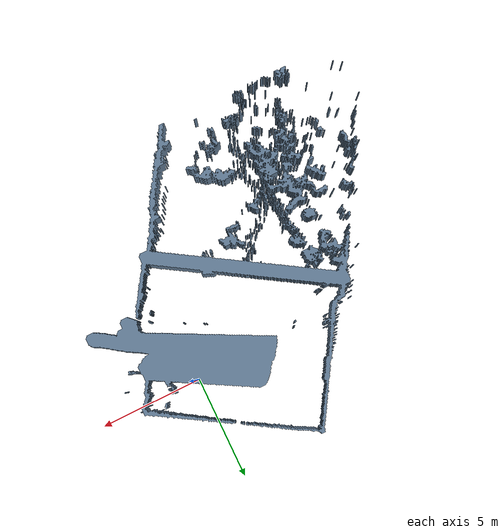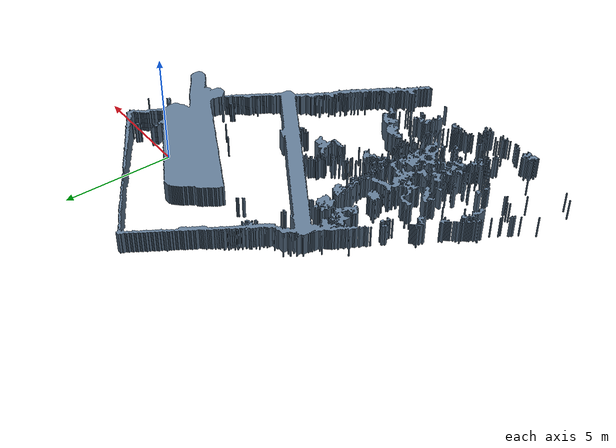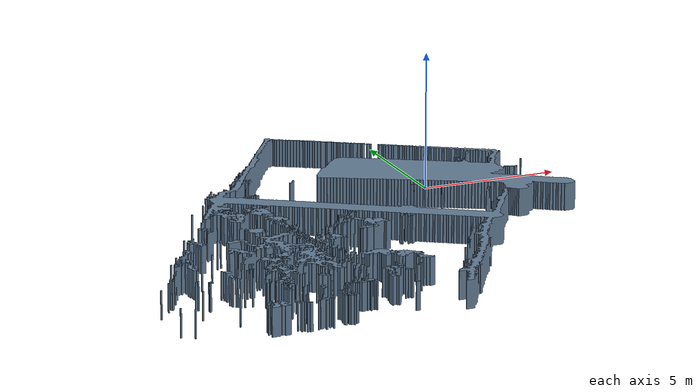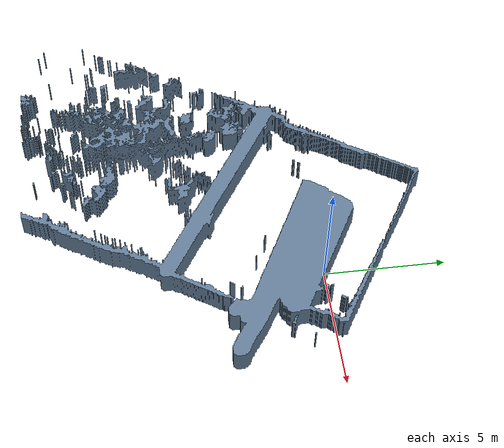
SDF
<?xml version='1.0' encoding='utf-8'?>
<sdf version="1.8">
  <!-- Static physical collisions and visuals reuse the exact raw planning-map extrusion mesh. -->
  <model name="planning_map_physical">
    <static>true</static>
    <link name="map">
      <visual name="obstacles">
        <geometry>
          <mesh>
            <uri>model://planning_map/meshes/obstacles.dae</uri>
          </mesh>
        </geometry>
        <material>
          <ambient>0.38 0.48 0.58 1</ambient>
          <diffuse>0.38 0.48 0.58 1</diffuse>
        </material>
      </visual>
      <collision name="raw_occupied_geometry">
        <geometry>
          <mesh>
            <uri>model://planning_map/meshes/obstacles.dae</uri>
          </mesh>
        </geometry>
      </collision>
    </link>
  </model>
</sdf>
